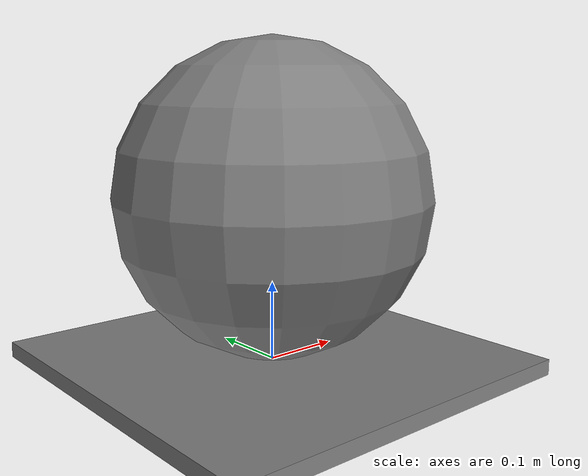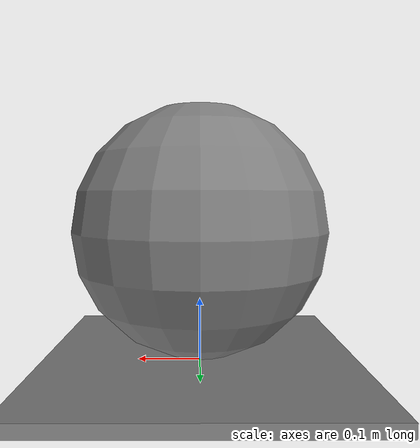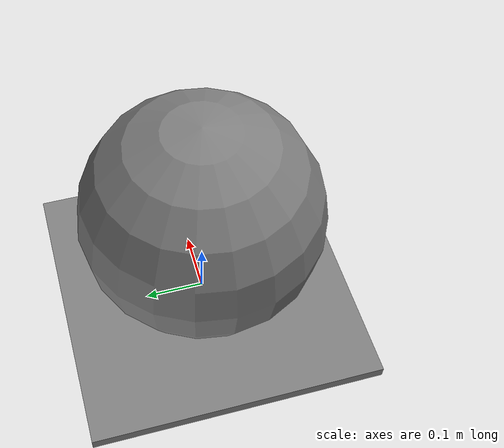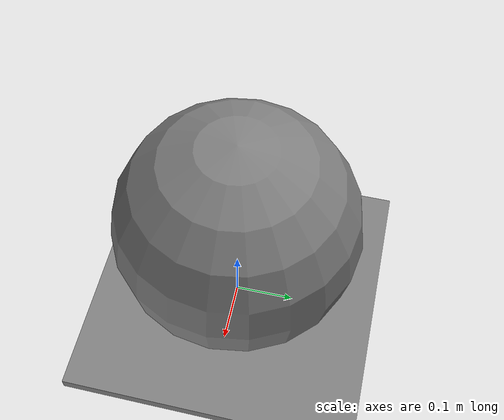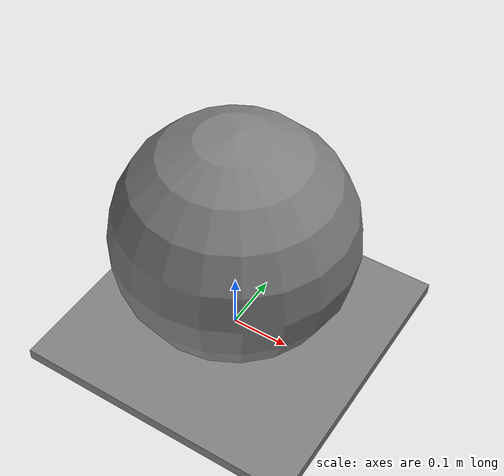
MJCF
<mujoco model="rollingball">
  <compiler inertiafromgeom="true" angle="radian" coordinate="local"/>
  <option timestep="0.01" gravity="0 0 -10" iterations='20'/>
  <default>
    <joint armature='0.04' damping="1" limited="false"/>
    <geom friction=".5 .1 .1" margin="0.002" condim="3" />
  </default>

  <worldbody>
    <geom name="floor" type="box" pos="0 0 0" size="10 10 0.01" />
    <body name="ball" pos="0 0 0.21">
      <geom name="ball_geom" type="sphere" pos="0 0 0" size="0.2" />
      <site name="ball_pos" pos="0 0 0" size="0.01"/>
      <joint name="ball_x"  type="slide" pos="0 0 0" axis="1 0 0"/>
      <joint name="ball_y"  type="slide" pos="0 0 0" axis="0 1 0"/>
      <joint name="ball_rx" type="hinge" pos="0 0 0" axis="1 0 0" />
      <joint name="ball_ry" type="hinge" pos="0 0 0" axis="0 1 0" />
      <joint name="ball_rz" type="hinge" pos="0 0 0" axis="0 0 1" />
    </body>
  </worldbody>

  <actuator>
    <motor joint="ball_rx" ctrllimited="true" ctrlrange="-10 10"/>
    <motor joint="ball_ry" ctrllimited="true" ctrlrange="-10 10"/>
  </actuator>

</mujoco>
